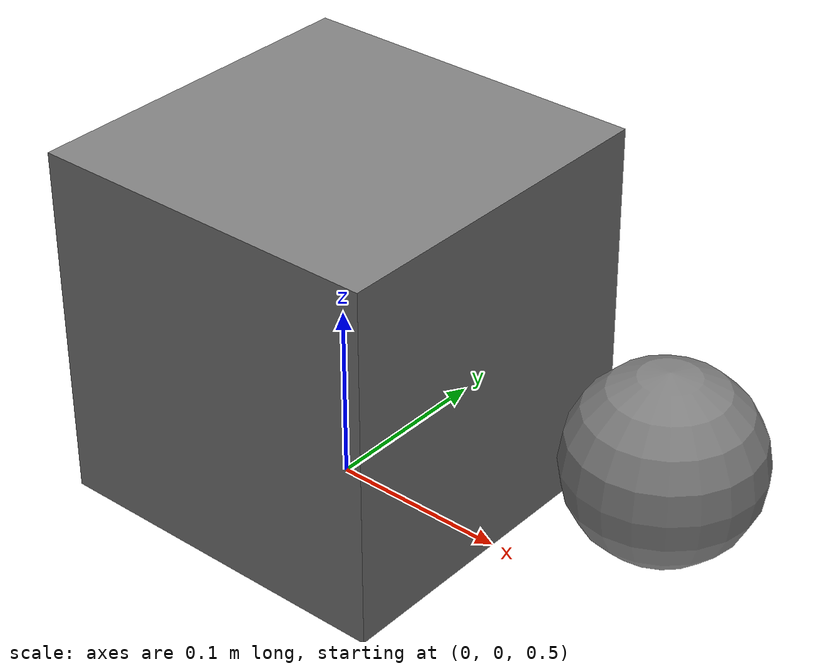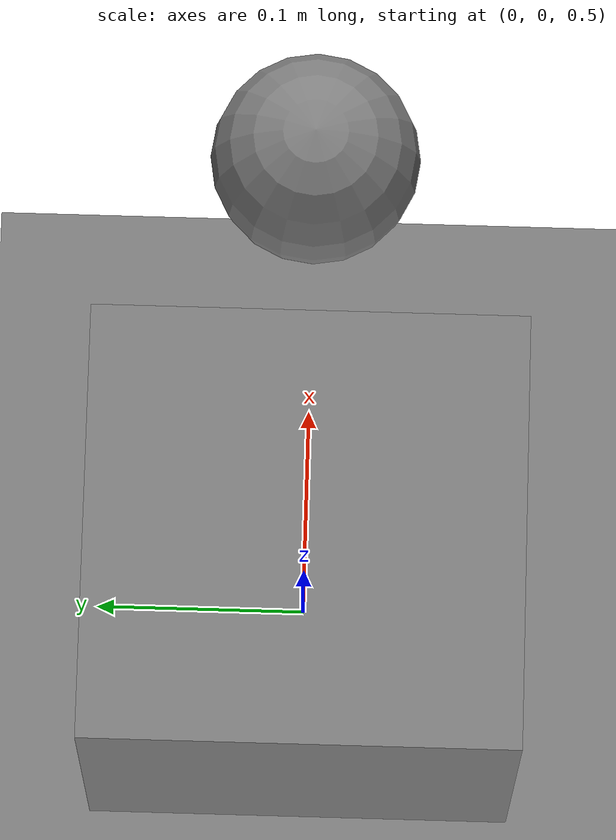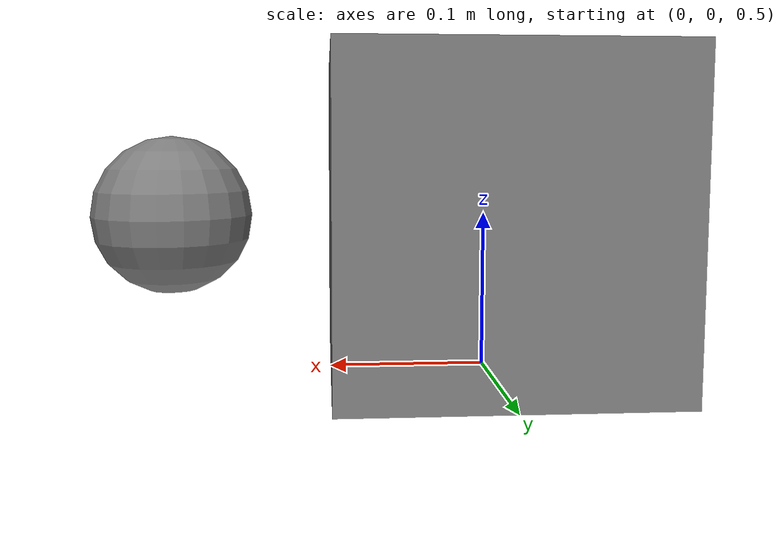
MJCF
<mujoco model="unisim-m1-semantics">
  <compiler angle="radian"/>
  <option timestep="0.004" gravity="0 0 -9.81" solver="Newton" integrator="Euler"/>
  <worldbody>
    <geom name="floor" type="plane" size="5 5 0.1"/>
    <body name="base" pos="0 0 0.6">
      <freejoint name="root"/>
      <inertial pos="0 0 0" mass="2" diaginertia="0.02 0.02 0.02"/>
      <geom name="base_geom" type="box" size="0.1 0.1 0.1"/>
      <site name="imu"/>
      <body name="arm" pos="0.2 0 0">
        <joint name="hinge" axis="0 1 0" range="-1 1" damping="0.1"/>
        <inertial pos="0 0 0" mass="0.5" diaginertia="0.005 0.005 0.005"/>
        <geom name="arm_geom" type="sphere" size="0.05"/>
      </body>
    </body>
  </worldbody>
  <contact><exclude body1="base" body2="arm"/></contact>
  <actuator><position name="drive" joint="hinge" kp="10" kv="1" ctrlrange="-1 1"/></actuator>
  <sensor><gyro name="gyro" site="imu"/><accelerometer name="accel" site="imu"/></sensor>
</mujoco>
